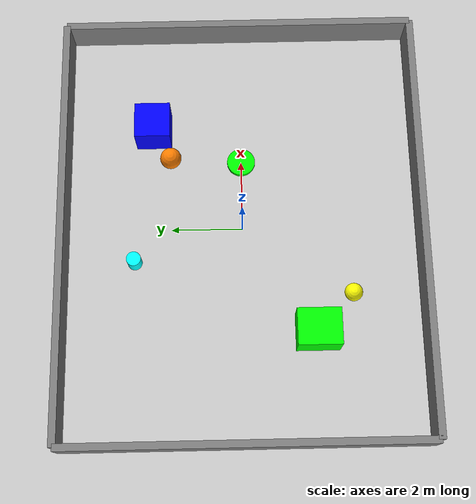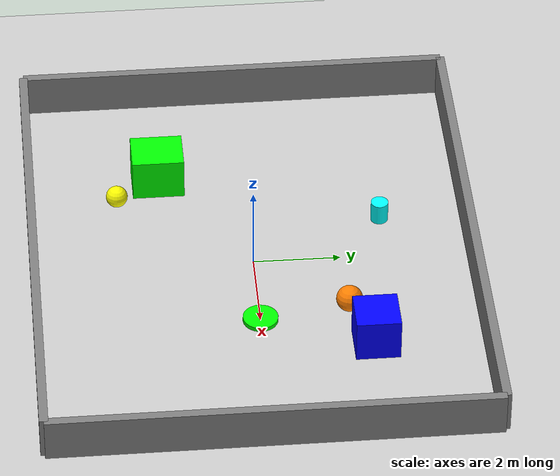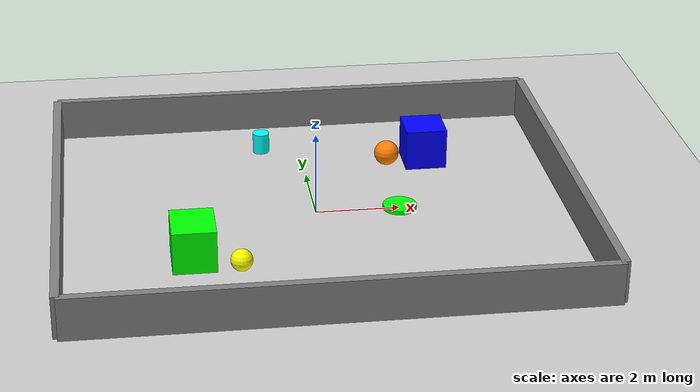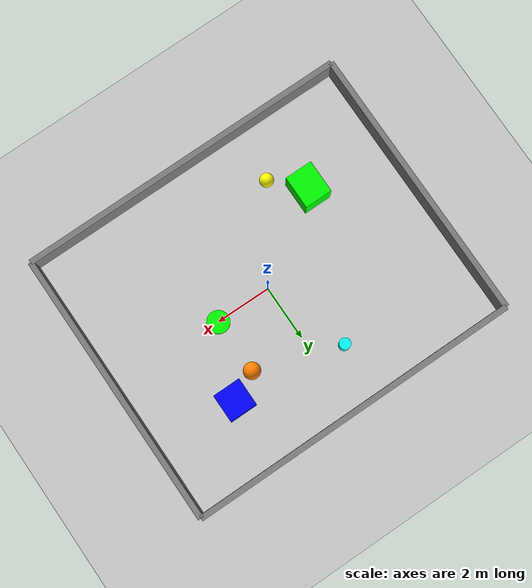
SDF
<?xml version="1.0" ?>
<sdf version="1.6">
  <world name="group1_navigation">
    <physics type="ode">
      <max_step_size>0.001</max_step_size>
      <real_time_factor>1</real_time_factor>
    </physics>

    <include>
      <uri>model://ground_plane</uri>
    </include>

    <include>
      <uri>model://sun</uri>
    </include>

    <model name='target_marker'>
      <static>1</static>
      <pose>2 0  0.05 0 0 0</pose>
      <link name='link'>
        <visual name='visual'>
          <geometry><cylinder><radius>0.4</radius><length>0.1</length></cylinder></geometry>
          <material><ambient>0 1 0 1</ambient><diffuse>0 1 0 1</diffuse></material>
        </visual>
      </link>
    </model>

    <!-- North Wall -->
    <model name="wall_north">
      <static>true</static>
      <pose>0 5 0.5 0 0 0</pose>
      <link name="link">
        <inertial>
          <mass>1</mass>
          <inertia>
            <ixx>0.1</ixx>
            <ixy>0</ixy>
            <ixz>0</ixz>
            <iyy>0.1</iyy>
            <iyz>0</iyz>
            <izz>0.1</izz>
          </inertia>
        </inertial>
        <collision name="collision">
          <geometry>
            <box>
              <size>12 0.2 1</size>
            </box>
          </geometry>
        </collision>
        <visual name="visual">
          <geometry>
            <box>
              <size>12 0.2 1</size>
            </box>
          </geometry>
          <material>
            <ambient>0.5 0.5 0.5 1</ambient>
            <diffuse>0.5 0.5 0.5 1</diffuse>
          </material>
        </visual>
      </link>
    </model>

    <!-- South Wall -->
    <model name="wall_south">
      <static>true</static>
      <pose>0 -5 0.5 0 0 0</pose>
      <link name="link">
        <inertial>
          <mass>1</mass>
          <inertia>
            <ixx>0.1</ixx>
            <ixy>0</ixy>
            <ixz>0</ixz>
            <iyy>0.1</iyy>
            <iyz>0</iyz>
            <izz>0.1</izz>
          </inertia>
        </inertial>
        <collision name="collision">
          <geometry>
            <box>
              <size>12 0.2 1</size>
            </box>
          </geometry>
        </collision>
        <visual name="visual">
          <geometry>
            <box>
              <size>12 0.2 1</size>
            </box>
          </geometry>
          <material>
            <ambient>0.5 0.5 0.5 1</ambient>
            <diffuse>0.5 0.5 0.5 1</diffuse>
          </material>
        </visual>
      </link>
    </model>

    <!-- East Wall -->
    <model name="wall_east">
      <static>true</static>
      <pose>6 0 0.5 0 0 0</pose>
      <link name="link">
        <inertial>
          <mass>1</mass>
          <inertia>
            <ixx>0.1</ixx>
            <ixy>0</ixy>
            <ixz>0</ixz>
            <iyy>0.1</iyy>
            <iyz>0</iyz>
            <izz>0.1</izz>
          </inertia>
        </inertial>
        <collision name="collision">
          <geometry>
            <box>
              <size>0.2 10 1</size>
            </box>
          </geometry>
        </collision>
        <visual name="visual">
          <geometry>
            <box>
              <size>0.2 10 1</size>
            </box>
          </geometry>
          <material>
            <ambient>0.5 0.5 0.5 1</ambient>
            <diffuse>0.5 0.5 0.5 1</diffuse>
          </material>
        </visual>
      </link>
    </model>

    <!-- West Wall -->
    <model name="wall_west">
      <static>true</static>
      <pose>-6 0 0.5 0 0 0</pose>
      <link name="link">
        <inertial>
          <mass>1</mass>
          <inertia>
            <ixx>0.1</ixx>
            <ixy>0</ixy>
            <ixz>0</ixz>
            <iyy>0.1</iyy>
            <iyz>0</iyz>
            <izz>0.1</izz>
          </inertia>
        </inertial>
        <collision name="collision">
          <geometry>
            <box>
              <size>0.2 10 1</size>
            </box>
          </geometry>
        </collision>
        <visual name="visual">
          <geometry>
            <box>
              <size>0.2 10 1</size>
            </box>
          </geometry>
          <material>
            <ambient>0.5 0.5 0.5 1</ambient>
            <diffuse>0.5 0.5 0.5 1</diffuse>
          </material>
        </visual>
      </link>
    </model>

    <!-- Static Box 1 (Red) -->

    <!-- Static Box 2 (Blue) -->
    <model name="static_box_2">
      <static>true</static>
      <pose>3 2.5 0.5 0 0 0</pose>
      <link name="link">
        <inertial>
          <mass>1</mass>
          <inertia>
            <ixx>0.1</ixx>
            <ixy>0</ixy>
            <ixz>0</ixz>
            <iyy>0.1</iyy>
            <iyz>0</iyz>
            <izz>0.1</izz>
          </inertia>
        </inertial>
        <collision name="collision">
          <geometry>
            <box>
              <size>1 1 1</size>
            </box>
          </geometry>
        </collision>
        <visual name="visual">
          <geometry>
            <box>
              <size>1 1 1</size>
            </box>
          </geometry>
          <material>
            <ambient>0 0 1 1</ambient>
            <diffuse>0 0 1 1</diffuse>
          </material>
        </visual>
      </link>
    </model>

    <!-- Static Box 3 (Green) -->
    <model name="static_box_3">
      <static>true</static>
      <pose>-3 -2 0.5 0 0 0</pose>
      <link name="link">
        <inertial>
          <mass>1</mass>
          <inertia>
            <ixx>0.1</ixx>
            <ixy>0</ixy>
            <ixz>0</ixz>
            <iyy>0.1</iyy>
            <iyz>0</iyz>
            <izz>0.1</izz>
          </inertia>
        </inertial>
        <collision name="collision">
          <geometry>
            <box>
              <size>1 1.2 1</size>
            </box>
          </geometry>
        </collision>
        <visual name="visual">
          <geometry>
            <box>
              <size>1 1.2 1</size>
            </box>
          </geometry>
          <material>
            <ambient>0 1 0 1</ambient>
            <diffuse>0 1 0 1</diffuse>
          </material>
        </visual>
      </link>
    </model>

    <!-- Mobile Sphere 1 (Orange) -->
    <model name="mobile_sphere_1">
      <pose>2 2 0.5 0 0 0</pose>
      <link name="link">
        <inertial>
          <mass>1.0</mass>
          <inertia>
            <ixx>0.4</ixx>
            <ixy>0</ixy>
            <ixz>0</ixz>
            <iyy>0.4</iyy>
            <iyz>0</iyz>
            <izz>0.4</izz>
          </inertia>
        </inertial>
        <collision name="collision">
          <geometry>
            <sphere>
              <radius>0.3</radius>
            </sphere>
          </geometry>
        </collision>
        <visual name="visual">
          <geometry>
            <sphere>
              <radius>0.3</radius>
            </sphere>
          </geometry>
          <material>
            <ambient>1 0.5 0 1</ambient>
            <diffuse>1 0.5 0 1</diffuse>
          </material>
        </visual>
      </link>
    </model>

    <!-- Mobile Sphere 2 (Yellow) -->
    <model name="mobile_sphere_2">
      <pose>-2 -3 0.5 0 0 0</pose>
      <link name="link">
        <inertial>
          <mass>1.0</mass>
          <inertia>
            <ixx>0.4</ixx>
            <ixy>0</ixy>
            <ixz>0</ixz>
            <iyy>0.4</iyy>
            <iyz>0</iyz>
            <izz>0.4</izz>
          </inertia>
        </inertial>
        <collision name="collision">
          <geometry>
            <sphere>
              <radius>0.25</radius>
            </sphere>
          </geometry>
        </collision>
        <visual name="visual">
          <geometry>
            <sphere>
              <radius>0.25</radius>
            </sphere>
          </geometry>
          <material>
            <ambient>1 1 0 1</ambient>
            <diffuse>1 1 0 1</diffuse>
          </material>
        </visual>
      </link>
    </model>

    <!-- Mobile Cylinder (Cyan) -->
    <model name="mobile_cylinder">
      <pose>-1 3 0.5 0 0 0</pose>
      <link name="link">
        <inertial>
          <mass>0.8</mass>
          <inertia>
            <ixx>0.1</ixx>
            <ixy>0</ixy>
            <ixz>0</ixz>
            <iyy>0.1</iyy>
            <iyz>0</iyz>
            <izz>0.1</izz>
          </inertia>
        </inertial>
        <collision name="collision">
          <geometry>
            <cylinder>
              <radius>0.2</radius>
              <length>0.5</length>
            </cylinder>
          </geometry>
        </collision>
        <visual name="visual">
          <geometry>
            <cylinder>
              <radius>0.2</radius>
              <length>0.5</length>
            </cylinder>
          </geometry>
          <material>
            <ambient>0 1 1 1</ambient>
            <diffuse>0 1 1 1</diffuse>
          </material>
        </visual>
      </link>
    </model>

  </world>
</sdf>
